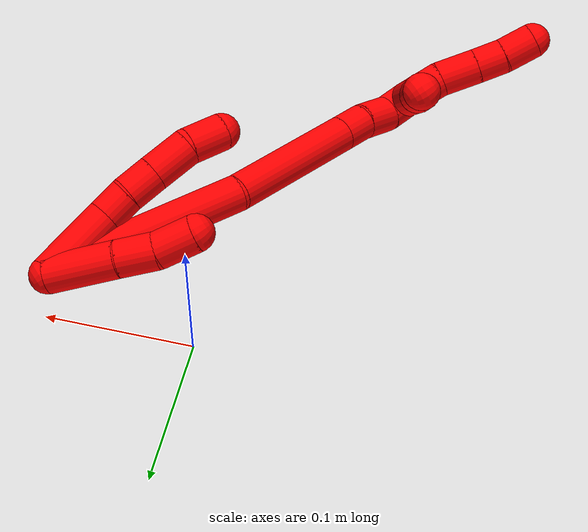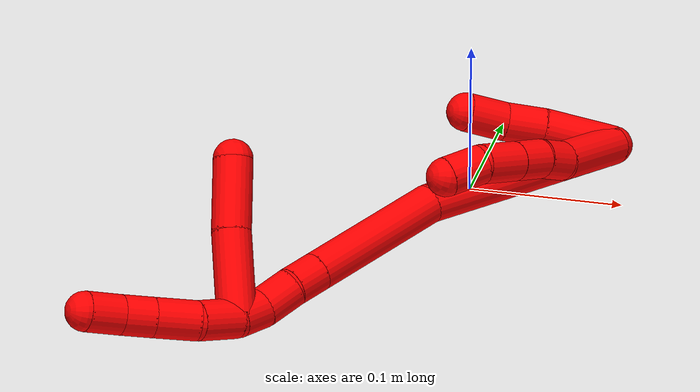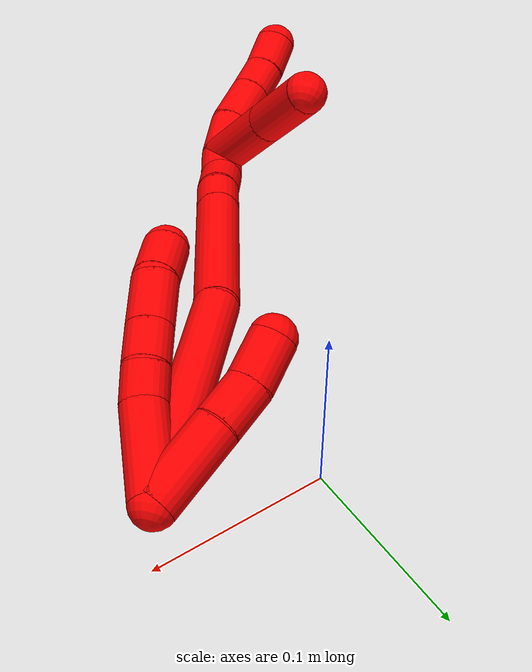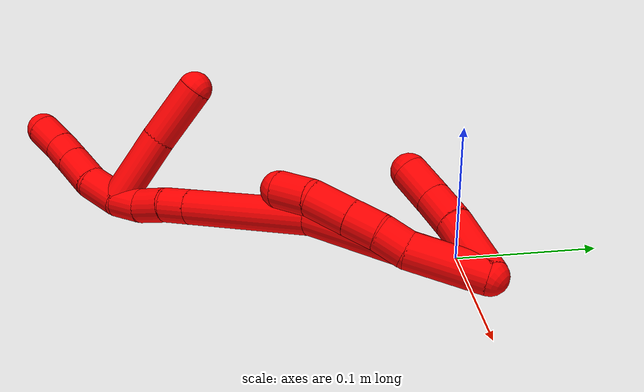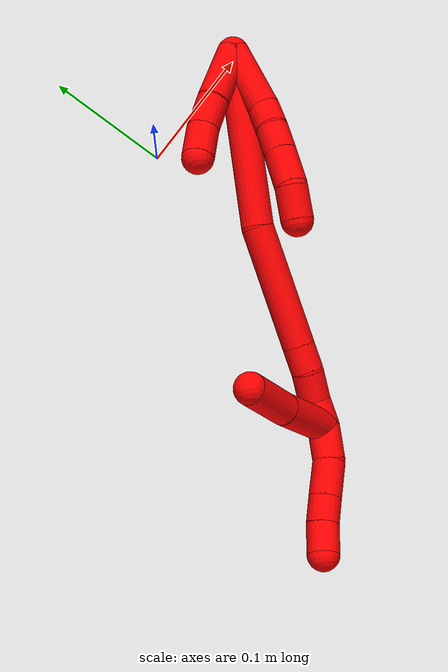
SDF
<sdf version="1.7">
 <world name="default">
  <model name="2">
   <static>0</static>
   <link name="2">
    <collision name="collision-cylinder-e_1_2_8">
     <pose>0.002425 -0.009349 0.024741 0.361297 0.091445 0.016713</pose>
     <geometry><cylinder><radius>0.0125</radius><length>0.053119</length></cylinder></geometry>
     <surface>
      <friction><ode><mu>1.16</mu><mu2>1.16</mu2><slip1>0</slip1><slip2>0</slip2></ode></friction>
      <contact><ode><kp>1e+06</kp><kd>1</kd><max_vel>0</max_vel><min_depth>0.001</min_depth></ode></contact>
     </surface>
    </collision>
    <visual name="visual-cylinder-e_1_2_8">
     <pose>0.002425 -0.009349 0.024741 0.361297 0.091445 0.016713</pose>
     <geometry><cylinder><radius>0.0125</radius><length>0.053119</length></cylinder></geometry>
     <material><ambient>1 0 0 1</ambient></material>
    </visual>
    <collision name="collision-cylinder-e_2_8_9">
     <pose>0.006726 -0.019765 0.059374 0.107374 0.186343 0.010043</pose>
     <geometry><cylinder><radius>0.0125</radius><length>0.020248</length></cylinder></geometry>
     <surface>
      <friction><ode><mu>1.16</mu><mu2>1.16</mu2><slip1>0</slip1><slip2>0</slip2></ode></friction>
      <contact><ode><kp>1e+06</kp><kd>1</kd><max_vel>0</max_vel><min_depth>0.001</min_depth></ode></contact>
     </surface>
    </collision>
    <visual name="visual-cylinder-e_2_8_9">
     <pose>0.006726 -0.019765 0.059374 0.107374 0.186343 0.010043</pose>
     <geometry><cylinder><radius>0.0125</radius><length>0.020248</length></cylinder></geometry>
     <material><ambient>1 0 0 1</ambient></material>
    </visual>
    <collision name="collision-cylinder-e_3_9_10">
     <pose>0.009095 -0.022826 0.080024 0.183338 0.044975 0.004135</pose>
     <geometry><cylinder><radius>0.0125</radius><length>0.021906</length></cylinder></geometry>
     <surface>
      <friction><ode><mu>1.16</mu><mu2>1.16</mu2><slip1>0</slip1><slip2>0</slip2></ode></friction>
      <contact><ode><kp>1e+06</kp><kd>1</kd><max_vel>0</max_vel><min_depth>0.001</min_depth></ode></contact>
     </surface>
    </collision>
    <visual name="visual-cylinder-e_3_9_10">
     <pose>0.009095 -0.022826 0.080024 0.183338 0.044975 0.004135</pose>
     <geometry><cylinder><radius>0.0125</radius><length>0.021906</length></cylinder></geometry>
     <material><ambient>1 0 0 1</ambient></material>
    </visual>
    <collision name="collision-cylinder-e_4_10_11">
     <pose>0.010087 -0.027268 0.104946 0.171071 0.034757 0.002981</pose>
     <geometry><cylinder><radius>0.0125</radius><length>0.028765</length></cylinder></geometry>
     <surface>
      <friction><ode><mu>1.16</mu><mu2>1.16</mu2><slip1>0</slip1><slip2>0</slip2></ode></friction>
      <contact><ode><kp>1e+06</kp><kd>1</kd><max_vel>0</max_vel><min_depth>0.001</min_depth></ode></contact>
     </surface>
    </collision>
    <visual name="visual-cylinder-e_4_10_11">
     <pose>0.010087 -0.027268 0.104946 0.171071 0.034757 0.002981</pose>
     <geometry><cylinder><radius>0.0125</radius><length>0.028765</length></cylinder></geometry>
     <material><ambient>1 0 0 1</ambient></material>
    </visual>
    <collision name="collision-cylinder-e_5_11_6">
     <pose>0.007251 -0.032987 0.131221 0.263907 -0.259881 -0.034685</pose>
     <geometry><cylinder><radius>0.0125</radius><length>0.025962</length></cylinder></geometry>
     <surface>
      <friction><ode><mu>1.16</mu><mu2>1.16</mu2><slip1>0</slip1><slip2>0</slip2></ode></friction>
      <contact><ode><kp>1e+06</kp><kd>1</kd><max_vel>0</max_vel><min_depth>0.001</min_depth></ode></contact>
     </surface>
    </collision>
    <visual name="visual-cylinder-e_5_11_6">
     <pose>0.007251 -0.032987 0.131221 0.263907 -0.259881 -0.034685</pose>
     <geometry><cylinder><radius>0.0125</radius><length>0.025962</length></cylinder></geometry>
     <material><ambient>1 0 0 1</ambient></material>
    </visual>
    <collision name="collision-cylinder-e_1_2_12">
     <pose>-0.004879 0.00873 0.021334 -0.388405 -0.208597 0.041171</pose>
     <geometry><cylinder><radius>0.0125</radius><length>0.047124</length></cylinder></geometry>
     <surface>
      <friction><ode><mu>1.16</mu><mu2>1.16</mu2><slip1>0</slip1><slip2>0</slip2></ode></friction>
      <contact><ode><kp>1e+06</kp><kd>1</kd><max_vel>0</max_vel><min_depth>0.001</min_depth></ode></contact>
     </surface>
    </collision>
    <visual name="visual-cylinder-e_1_2_12">
     <pose>-0.004879 0.00873 0.021334 -0.388405 -0.208597 0.041171</pose>
     <geometry><cylinder><radius>0.0125</radius><length>0.047124</length></cylinder></geometry>
     <material><ambient>1 0 0 1</ambient></material>
    </visual>
    <collision name="collision-cylinder-e_2_12_13">
     <pose>-0.013149 0.02131 0.054616 -0.311776 -0.263751 0.041688</pose>
     <geometry><cylinder><radius>0.0125</radius><length>0.026005</length></cylinder></geometry>
     <surface>
      <friction><ode><mu>1.16</mu><mu2>1.16</mu2><slip1>0</slip1><slip2>0</slip2></ode></friction>
      <contact><ode><kp>1e+06</kp><kd>1</kd><max_vel>0</max_vel><min_depth>0.001</min_depth></ode></contact>
     </surface>
    </collision>
    <visual name="visual-cylinder-e_2_12_13">
     <pose>-0.013149 0.02131 0.054616 -0.311776 -0.263751 0.041688</pose>
     <geometry><cylinder><radius>0.0125</radius><length>0.026005</length></cylinder></geometry>
     <material><ambient>1 0 0 1</ambient></material>
    </visual>
    <collision name="collision-cylinder-e_3_13_5">
     <pose>-0.017296 0.028405 0.07958 -0.244244 -0.05641 0.006925</pose>
     <geometry><cylinder><radius>0.0125</radius><length>0.026871</length></cylinder></geometry>
     <surface>
      <friction><ode><mu>1.16</mu><mu2>1.16</mu2><slip1>0</slip1><slip2>0</slip2></ode></friction>
      <contact><ode><kp>1e+06</kp><kd>1</kd><max_vel>0</max_vel><min_depth>0.001</min_depth></ode></contact>
     </surface>
    </collision>
    <visual name="visual-cylinder-e_3_13_5">
     <pose>-0.017296 0.028405 0.07958 -0.244244 -0.05641 0.006925</pose>
     <geometry><cylinder><radius>0.0125</radius><length>0.026871</length></cylinder></geometry>
     <material><ambient>1 0 0 1</ambient></material>
    </visual>
    <collision name="collision-cylinder-e_1_2_14">
     <pose>-0.017815 -0.014443 0.065326 0.21759 -0.260247 -0.028585</pose>
     <geometry><cylinder><radius>0.0125</radius><length>0.13847</length></cylinder></geometry>
     <surface>
      <friction><ode><mu>1.16</mu><mu2>1.16</mu2><slip1>0</slip1><slip2>0</slip2></ode></friction>
      <contact><ode><kp>1e+06</kp><kd>1</kd><max_vel>0</max_vel><min_depth>0.001</min_depth></ode></contact>
     </surface>
    </collision>
    <visual name="visual-cylinder-e_1_2_14">
     <pose>-0.017815 -0.014443 0.065326 0.21759 -0.260247 -0.028585</pose>
     <geometry><cylinder><radius>0.0125</radius><length>0.13847</length></cylinder></geometry>
     <material><ambient>1 0 0 1</ambient></material>
    </visual>
    <collision name="collision-cylinder-e_2_14_15">
     <pose>-0.046646 -0.04945 0.172758 0.454314 -0.230882 -0.053593</pose>
     <geometry><cylinder><radius>0.0125</radius><length>0.096273</length></cylinder></geometry>
     <surface>
      <friction><ode><mu>1.16</mu><mu2>1.16</mu2><slip1>0</slip1><slip2>0</slip2></ode></friction>
      <contact><ode><kp>1e+06</kp><kd>1</kd><max_vel>0</max_vel><min_depth>0.001</min_depth></ode></contact>
     </surface>
    </collision>
    <visual name="visual-cylinder-e_2_14_15">
     <pose>-0.046646 -0.04945 0.172758 0.454314 -0.230882 -0.053593</pose>
     <geometry><cylinder><radius>0.0125</radius><length>0.096273</length></cylinder></geometry>
     <material><ambient>1 0 0 1</ambient></material>
    </visual>
    <collision name="collision-cylinder-e_3_15_16">
     <pose>-0.060021 -0.074509 0.224055 0.454853 -0.226644 -0.052666</pose>
     <geometry><cylinder><radius>0.0125</radius><length>0.021001</length></cylinder></geometry>
     <surface>
      <friction><ode><mu>1.16</mu><mu2>1.16</mu2><slip1>0</slip1><slip2>0</slip2></ode></friction>
      <contact><ode><kp>1e+06</kp><kd>1</kd><max_vel>0</max_vel><min_depth>0.001</min_depth></ode></contact>
     </surface>
    </collision>
    <visual name="visual-cylinder-e_3_15_16">
     <pose>-0.060021 -0.074509 0.224055 0.454853 -0.226644 -0.052666</pose>
     <geometry><cylinder><radius>0.0125</radius><length>0.021001</length></cylinder></geometry>
     <material><ambient>1 0 0 1</ambient></material>
    </visual>
    <collision name="collision-cylinder-e_4_16_17">
     <pose>-0.066996 -0.08411 0.242993 0.48258 -0.397218 -0.098974</pose>
     <geometry><cylinder><radius>0.0125</radius><length>0.023863</length></cylinder></geometry>
     <surface>
      <friction><ode><mu>1.16</mu><mu2>1.16</mu2><slip1>0</slip1><slip2>0</slip2></ode></friction>
      <contact><ode><kp>1e+06</kp><kd>1</kd><max_vel>0</max_vel><min_depth>0.001</min_depth></ode></contact>
     </surface>
    </collision>
    <visual name="visual-cylinder-e_4_16_17">
     <pose>-0.066996 -0.08411 0.242993 0.48258 -0.397218 -0.098974</pose>
     <geometry><cylinder><radius>0.0125</radius><length>0.023863</length></cylinder></geometry>
     <material><ambient>1 0 0 1</ambient></material>
    </visual>
    <collision name="collision-cylinder-e_5_17_1">
     <pose>-0.072699 -0.092657 0.262276 0.346261 -0.106828 -0.018699</pose>
     <geometry><cylinder><radius>0.0125</radius><length>0.020394</length></cylinder></geometry>
     <surface>
      <friction><ode><mu>1.16</mu><mu2>1.16</mu2><slip1>0</slip1><slip2>0</slip2></ode></friction>
      <contact><ode><kp>1e+06</kp><kd>1</kd><max_vel>0</max_vel><min_depth>0.001</min_depth></ode></contact>
     </surface>
    </collision>
    <visual name="visual-cylinder-e_5_17_1">
     <pose>-0.072699 -0.092657 0.262276 0.346261 -0.106828 -0.018699</pose>
     <geometry><cylinder><radius>0.0125</radius><length>0.020394</length></cylinder></geometry>
     <material><ambient>1 0 0 1</ambient></material>
    </visual>
    <collision name="collision-cylinder-e_1_1_18">
     <pose>-0.074645 -0.09709 0.285615 0.071803 -0.061984 -0.002227</pose>
     <geometry><cylinder><radius>0.0125</radius><length>0.02773</length></cylinder></geometry>
     <surface>
      <friction><ode><mu>1.16</mu><mu2>1.16</mu2><slip1>0</slip1><slip2>0</slip2></ode></friction>
      <contact><ode><kp>1e+06</kp><kd>1</kd><max_vel>0</max_vel><min_depth>0.001</min_depth></ode></contact>
     </surface>
    </collision>
    <visual name="visual-cylinder-e_1_1_18">
     <pose>-0.074645 -0.09709 0.285615 0.071803 -0.061984 -0.002227</pose>
     <geometry><cylinder><radius>0.0125</radius><length>0.02773</length></cylinder></geometry>
     <material><ambient>1 0 0 1</ambient></material>
    </visual>
    <collision name="collision-cylinder-e_2_18_19">
     <pose>-0.078095 -0.095795 0.313154 -0.165039 -0.183938 0.015256</pose>
     <geometry><cylinder><radius>0.0125</radius><length>0.028327</length></cylinder></geometry>
     <surface>
      <friction><ode><mu>1.16</mu><mu2>1.16</mu2><slip1>0</slip1><slip2>0</slip2></ode></friction>
      <contact><ode><kp>1e+06</kp><kd>1</kd><max_vel>0</max_vel><min_depth>0.001</min_depth></ode></contact>
     </surface>
    </collision>
    <visual name="visual-cylinder-e_2_18_19">
     <pose>-0.078095 -0.095795 0.313154 -0.165039 -0.183938 0.015256</pose>
     <geometry><cylinder><radius>0.0125</radius><length>0.028327</length></cylinder></geometry>
     <material><ambient>1 0 0 1</ambient></material>
    </visual>
    <collision name="collision-cylinder-e_3_19_20">
     <pose>-0.082367 -0.091915 0.336838 -0.1587 -0.165401 0.013182</pose>
     <geometry><cylinder><radius>0.0125</radius><length>0.020429</length></cylinder></geometry>
     <surface>
      <friction><ode><mu>1.16</mu><mu2>1.16</mu2><slip1>0</slip1><slip2>0</slip2></ode></friction>
      <contact><ode><kp>1e+06</kp><kd>1</kd><max_vel>0</max_vel><min_depth>0.001</min_depth></ode></contact>
     </surface>
    </collision>
    <visual name="visual-cylinder-e_3_19_20">
     <pose>-0.082367 -0.091915 0.336838 -0.1587 -0.165401 0.013182</pose>
     <geometry><cylinder><radius>0.0125</radius><length>0.020429</length></cylinder></geometry>
     <material><ambient>1 0 0 1</ambient></material>
    </visual>
    <collision name="collision-cylinder-e_4_20_4">
     <pose>-0.084688 -0.089178 0.35847 -0.097707 -0.054399 0.00266</pose>
     <geometry><cylinder><radius>0.0125</radius><length>0.023513</length></cylinder></geometry>
     <surface>
      <friction><ode><mu>1.16</mu><mu2>1.16</mu2><slip1>0</slip1><slip2>0</slip2></ode></friction>
      <contact><ode><kp>1e+06</kp><kd>1</kd><max_vel>0</max_vel><min_depth>0.001</min_depth></ode></contact>
     </surface>
    </collision>
    <visual name="visual-cylinder-e_4_20_4">
     <pose>-0.084688 -0.089178 0.35847 -0.097707 -0.054399 0.00266</pose>
     <geometry><cylinder><radius>0.0125</radius><length>0.023513</length></cylinder></geometry>
     <material><ambient>1 0 0 1</ambient></material>
    </visual>
    <collision name="collision-cylinder-e_1_1_21">
     <pose>-0.063971 -0.070755 0.271381 -1.58784 0.369467 -0.375672</pose>
     <geometry><cylinder><radius>0.0125</radius><length>0.054361</length></cylinder></geometry>
     <surface>
      <friction><ode><mu>1.16</mu><mu2>1.16</mu2><slip1>0</slip1><slip2>0</slip2></ode></friction>
      <contact><ode><kp>1e+06</kp><kd>1</kd><max_vel>0</max_vel><min_depth>0.001</min_depth></ode></contact>
     </surface>
    </collision>
    <visual name="visual-cylinder-e_1_1_21">
     <pose>-0.063971 -0.070755 0.271381 -1.58784 0.369467 -0.375672</pose>
     <geometry><cylinder><radius>0.0125</radius><length>0.054361</length></cylinder></geometry>
     <material><ambient>1 0 0 1</ambient></material>
    </visual>
    <collision name="collision-cylinder-e_2_21_3">
     <pose>-0.045094 -0.024564 0.268961 -1.66583 0.408355 -0.447839</pose>
     <geometry><cylinder><radius>0.0125</radius><length>0.045639</length></cylinder></geometry>
     <surface>
      <friction><ode><mu>1.16</mu><mu2>1.16</mu2><slip1>0</slip1><slip2>0</slip2></ode></friction>
      <contact><ode><kp>1e+06</kp><kd>1</kd><max_vel>0</max_vel><min_depth>0.001</min_depth></ode></contact>
     </surface>
    </collision>
    <visual name="visual-cylinder-e_2_21_3">
     <pose>-0.045094 -0.024564 0.268961 -1.66583 0.408355 -0.447839</pose>
     <geometry><cylinder><radius>0.0125</radius><length>0.045639</length></cylinder></geometry>
     <material><ambient>1 0 0 1</ambient></material>
    </visual>
    <collision name="collision-sphere-3">
     <pose>-0.036033 -0.003715 0.266974 0 -0 0</pose>
     <geometry><sphere><radius>0.0125</radius></sphere></geometry>
     <surface>
      <friction><ode><mu>1.16</mu><mu2>1.16</mu2><slip1>0</slip1><slip2>0</slip2></ode></friction>
      <contact><ode><kp>1e+06</kp><kd>1</kd><max_vel>0</max_vel><min_depth>0.001</min_depth></ode></contact>
     </surface>
    </collision>
    <visual name="visual-sphere-3">
     <pose>-0.036033 -0.003715 0.266974 0 -0 0</pose>
     <geometry><sphere><radius>0.0125</radius></sphere></geometry>
     <material><ambient>1 0 0 1</ambient></material>
    </visual>
    <collision name="collision-sphere-21">
     <pose>-0.054156 -0.045412 0.270948 0 -0 0</pose>
     <geometry><sphere><radius>0.0125</radius></sphere></geometry>
     <surface>
      <friction><ode><mu>1.16</mu><mu2>1.16</mu2><slip1>0</slip1><slip2>0</slip2></ode></friction>
      <contact><ode><kp>1e+06</kp><kd>1</kd><max_vel>0</max_vel><min_depth>0.001</min_depth></ode></contact>
     </surface>
    </collision>
    <visual name="visual-sphere-21">
     <pose>-0.054156 -0.045412 0.270948 0 -0 0</pose>
     <geometry><sphere><radius>0.0125</radius></sphere></geometry>
     <material><ambient>1 0 0 1</ambient></material>
    </visual>
    <collision name="collision-sphere-4">
     <pose>-0.085328 -0.088033 0.370153 0 -0 0</pose>
     <geometry><sphere><radius>0.0125</radius></sphere></geometry>
     <surface>
      <friction><ode><mu>1.16</mu><mu2>1.16</mu2><slip1>0</slip1><slip2>0</slip2></ode></friction>
      <contact><ode><kp>1e+06</kp><kd>1</kd><max_vel>0</max_vel><min_depth>0.001</min_depth></ode></contact>
     </surface>
    </collision>
    <visual name="visual-sphere-4">
     <pose>-0.085328 -0.088033 0.370153 0 -0 0</pose>
     <geometry><sphere><radius>0.0125</radius></sphere></geometry>
     <material><ambient>1 0 0 1</ambient></material>
    </visual>
    <collision name="collision-sphere-20">
     <pose>-0.084049 -0.090323 0.346786 0 -0 0</pose>
     <geometry><sphere><radius>0.0125</radius></sphere></geometry>
     <surface>
      <friction><ode><mu>1.16</mu><mu2>1.16</mu2><slip1>0</slip1><slip2>0</slip2></ode></friction>
      <contact><ode><kp>1e+06</kp><kd>1</kd><max_vel>0</max_vel><min_depth>0.001</min_depth></ode></contact>
     </surface>
    </collision>
    <visual name="visual-sphere-20">
     <pose>-0.084049 -0.090323 0.346786 0 -0 0</pose>
     <geometry><sphere><radius>0.0125</radius></sphere></geometry>
     <material><ambient>1 0 0 1</ambient></material>
    </visual>
    <collision name="collision-sphere-6">
     <pose>0.003915 -0.036259 0.143331 0 -0 0</pose>
     <geometry><sphere><radius>0.0125</radius></sphere></geometry>
     <surface>
      <friction><ode><mu>1.16</mu><mu2>1.16</mu2><slip1>0</slip1><slip2>0</slip2></ode></friction>
      <contact><ode><kp>1e+06</kp><kd>1</kd><max_vel>0</max_vel><min_depth>0.001</min_depth></ode></contact>
     </surface>
    </collision>
    <visual name="visual-sphere-6">
     <pose>0.003915 -0.036259 0.143331 0 -0 0</pose>
     <geometry><sphere><radius>0.0125</radius></sphere></geometry>
     <material><ambient>1 0 0 1</ambient></material>
    </visual>
    <collision name="collision-sphere-11">
     <pose>0.010587 -0.029715 0.11911 0 -0 0</pose>
     <geometry><sphere><radius>0.0125</radius></sphere></geometry>
     <surface>
      <friction><ode><mu>1.16</mu><mu2>1.16</mu2><slip1>0</slip1><slip2>0</slip2></ode></friction>
      <contact><ode><kp>1e+06</kp><kd>1</kd><max_vel>0</max_vel><min_depth>0.001</min_depth></ode></contact>
     </surface>
    </collision>
    <visual name="visual-sphere-11">
     <pose>0.010587 -0.029715 0.11911 0 -0 0</pose>
     <geometry><sphere><radius>0.0125</radius></sphere></geometry>
     <material><ambient>1 0 0 1</ambient></material>
    </visual>
    <collision name="collision-sphere-10">
     <pose>0.009587 -0.024821 0.090782 0 -0 0</pose>
     <geometry><sphere><radius>0.0125</radius></sphere></geometry>
     <surface>
      <friction><ode><mu>1.16</mu><mu2>1.16</mu2><slip1>0</slip1><slip2>0</slip2></ode></friction>
      <contact><ode><kp>1e+06</kp><kd>1</kd><max_vel>0</max_vel><min_depth>0.001</min_depth></ode></contact>
     </surface>
    </collision>
    <visual name="visual-sphere-10">
     <pose>0.009587 -0.024821 0.090782 0 -0 0</pose>
     <geometry><sphere><radius>0.0125</radius></sphere></geometry>
     <material><ambient>1 0 0 1</ambient></material>
    </visual>
    <collision name="collision-sphere-9">
     <pose>0.008602 -0.020831 0.069266 0 -0 0</pose>
     <geometry><sphere><radius>0.0125</radius></sphere></geometry>
     <surface>
      <friction><ode><mu>1.16</mu><mu2>1.16</mu2><slip1>0</slip1><slip2>0</slip2></ode></friction>
      <contact><ode><kp>1e+06</kp><kd>1</kd><max_vel>0</max_vel><min_depth>0.001</min_depth></ode></contact>
     </surface>
    </collision>
    <visual name="visual-sphere-9">
     <pose>0.008602 -0.020831 0.069266 0 -0 0</pose>
     <geometry><sphere><radius>0.0125</radius></sphere></geometry>
     <material><ambient>1 0 0 1</ambient></material>
    </visual>
    <collision name="collision-sphere-2">
     <geometry><sphere><radius>0.0125</radius></sphere></geometry>
     <surface>
      <friction><ode><mu>1.16</mu><mu2>1.16</mu2><slip1>0</slip1><slip2>0</slip2></ode></friction>
      <contact><ode><kp>1e+06</kp><kd>1</kd><max_vel>0</max_vel><min_depth>0.001</min_depth></ode></contact>
     </surface>
    </collision>
    <visual name="visual-sphere-2">
     <geometry><sphere><radius>0.0125</radius></sphere></geometry>
     <material><ambient>1 0 0 1</ambient></material>
    </visual>
    <collision name="collision-sphere-19">
     <pose>-0.080685 -0.093508 0.326889 0 -0 0</pose>
     <geometry><sphere><radius>0.0125</radius></sphere></geometry>
     <surface>
      <friction><ode><mu>1.16</mu><mu2>1.16</mu2><slip1>0</slip1><slip2>0</slip2></ode></friction>
      <contact><ode><kp>1e+06</kp><kd>1</kd><max_vel>0</max_vel><min_depth>0.001</min_depth></ode></contact>
     </surface>
    </collision>
    <visual name="visual-sphere-19">
     <pose>-0.080685 -0.093508 0.326889 0 -0 0</pose>
     <geometry><sphere><radius>0.0125</radius></sphere></geometry>
     <material><ambient>1 0 0 1</ambient></material>
    </visual>
    <collision name="collision-sphere-8">
     <pose>0.004851 -0.018699 0.049482 0 -0 0</pose>
     <geometry><sphere><radius>0.0125</radius></sphere></geometry>
     <surface>
      <friction><ode><mu>1.16</mu><mu2>1.16</mu2><slip1>0</slip1><slip2>0</slip2></ode></friction>
      <contact><ode><kp>1e+06</kp><kd>1</kd><max_vel>0</max_vel><min_depth>0.001</min_depth></ode></contact>
     </surface>
    </collision>
    <visual name="visual-sphere-8">
     <pose>0.004851 -0.018699 0.049482 0 -0 0</pose>
     <geometry><sphere><radius>0.0125</radius></sphere></geometry>
     <material><ambient>1 0 0 1</ambient></material>
    </visual>
    <collision name="collision-sphere-12">
     <pose>-0.009759 0.01746 0.042669 0 -0 0</pose>
     <geometry><sphere><radius>0.0125</radius></sphere></geometry>
     <surface>
      <friction><ode><mu>1.16</mu><mu2>1.16</mu2><slip1>0</slip1><slip2>0</slip2></ode></friction>
      <contact><ode><kp>1e+06</kp><kd>1</kd><max_vel>0</max_vel><min_depth>0.001</min_depth></ode></contact>
     </surface>
    </collision>
    <visual name="visual-sphere-12">
     <pose>-0.009759 0.01746 0.042669 0 -0 0</pose>
     <geometry><sphere><radius>0.0125</radius></sphere></geometry>
     <material><ambient>1 0 0 1</ambient></material>
    </visual>
    <collision name="collision-sphere-13">
     <pose>-0.016538 0.025161 0.066564 0 -0 0</pose>
     <geometry><sphere><radius>0.0125</radius></sphere></geometry>
     <surface>
      <friction><ode><mu>1.16</mu><mu2>1.16</mu2><slip1>0</slip1><slip2>0</slip2></ode></friction>
      <contact><ode><kp>1e+06</kp><kd>1</kd><max_vel>0</max_vel><min_depth>0.001</min_depth></ode></contact>
     </surface>
    </collision>
    <visual name="visual-sphere-13">
     <pose>-0.016538 0.025161 0.066564 0 -0 0</pose>
     <geometry><sphere><radius>0.0125</radius></sphere></geometry>
     <material><ambient>1 0 0 1</ambient></material>
    </visual>
    <collision name="collision-sphere-5">
     <pose>-0.018053 0.031648 0.092596 0 -0 0</pose>
     <geometry><sphere><radius>0.0125</radius></sphere></geometry>
     <surface>
      <friction><ode><mu>1.16</mu><mu2>1.16</mu2><slip1>0</slip1><slip2>0</slip2></ode></friction>
      <contact><ode><kp>1e+06</kp><kd>1</kd><max_vel>0</max_vel><min_depth>0.001</min_depth></ode></contact>
     </surface>
    </collision>
    <visual name="visual-sphere-5">
     <pose>-0.018053 0.031648 0.092596 0 -0 0</pose>
     <geometry><sphere><radius>0.0125</radius></sphere></geometry>
     <material><ambient>1 0 0 1</ambient></material>
    </visual>
    <collision name="collision-sphere-14">
     <pose>-0.035631 -0.028886 0.130652 0 -0 0</pose>
     <geometry><sphere><radius>0.0125</radius></sphere></geometry>
     <surface>
      <friction><ode><mu>1.16</mu><mu2>1.16</mu2><slip1>0</slip1><slip2>0</slip2></ode></friction>
      <contact><ode><kp>1e+06</kp><kd>1</kd><max_vel>0</max_vel><min_depth>0.001</min_depth></ode></contact>
     </surface>
    </collision>
    <visual name="visual-sphere-14">
     <pose>-0.035631 -0.028886 0.130652 0 -0 0</pose>
     <geometry><sphere><radius>0.0125</radius></sphere></geometry>
     <material><ambient>1 0 0 1</ambient></material>
    </visual>
    <collision name="collision-sphere-15">
     <pose>-0.057662 -0.070014 0.214864 0 -0 0</pose>
     <geometry><sphere><radius>0.0125</radius></sphere></geometry>
     <surface>
      <friction><ode><mu>1.16</mu><mu2>1.16</mu2><slip1>0</slip1><slip2>0</slip2></ode></friction>
      <contact><ode><kp>1e+06</kp><kd>1</kd><max_vel>0</max_vel><min_depth>0.001</min_depth></ode></contact>
     </surface>
    </collision>
    <visual name="visual-sphere-15">
     <pose>-0.057662 -0.070014 0.214864 0 -0 0</pose>
     <geometry><sphere><radius>0.0125</radius></sphere></geometry>
     <material><ambient>1 0 0 1</ambient></material>
    </visual>
    <collision name="collision-sphere-16">
     <pose>-0.062381 -0.079004 0.233247 0 -0 0</pose>
     <geometry><sphere><radius>0.0125</radius></sphere></geometry>
     <surface>
      <friction><ode><mu>1.16</mu><mu2>1.16</mu2><slip1>0</slip1><slip2>0</slip2></ode></friction>
      <contact><ode><kp>1e+06</kp><kd>1</kd><max_vel>0</max_vel><min_depth>0.001</min_depth></ode></contact>
     </surface>
    </collision>
    <visual name="visual-sphere-16">
     <pose>-0.062381 -0.079004 0.233247 0 -0 0</pose>
     <geometry><sphere><radius>0.0125</radius></sphere></geometry>
     <material><ambient>1 0 0 1</ambient></material>
    </visual>
    <collision name="collision-sphere-17">
     <pose>-0.071612 -0.089216 0.252739 0 -0 0</pose>
     <geometry><sphere><radius>0.0125</radius></sphere></geometry>
     <surface>
      <friction><ode><mu>1.16</mu><mu2>1.16</mu2><slip1>0</slip1><slip2>0</slip2></ode></friction>
      <contact><ode><kp>1e+06</kp><kd>1</kd><max_vel>0</max_vel><min_depth>0.001</min_depth></ode></contact>
     </surface>
    </collision>
    <visual name="visual-sphere-17">
     <pose>-0.071612 -0.089216 0.252739 0 -0 0</pose>
     <geometry><sphere><radius>0.0125</radius></sphere></geometry>
     <material><ambient>1 0 0 1</ambient></material>
    </visual>
    <collision name="collision-sphere-1">
     <pose>-0.073787 -0.096098 0.271813 0 -0 0</pose>
     <geometry><sphere><radius>0.0125</radius></sphere></geometry>
     <surface>
      <friction><ode><mu>1.16</mu><mu2>1.16</mu2><slip1>0</slip1><slip2>0</slip2></ode></friction>
      <contact><ode><kp>1e+06</kp><kd>1</kd><max_vel>0</max_vel><min_depth>0.001</min_depth></ode></contact>
     </surface>
    </collision>
    <visual name="visual-sphere-1">
     <pose>-0.073787 -0.096098 0.271813 0 -0 0</pose>
     <geometry><sphere><radius>0.0125</radius></sphere></geometry>
     <material><ambient>1 0 0 1</ambient></material>
    </visual>
    <collision name="collision-sphere-18">
     <pose>-0.075504 -0.098083 0.299418 0 -0 0</pose>
     <geometry><sphere><radius>0.0125</radius></sphere></geometry>
     <surface>
      <friction><ode><mu>1.16</mu><mu2>1.16</mu2><slip1>0</slip1><slip2>0</slip2></ode></friction>
      <contact><ode><kp>1e+06</kp><kd>1</kd><max_vel>0</max_vel><min_depth>0.001</min_depth></ode></contact>
     </surface>
    </collision>
    <visual name="visual-sphere-18">
     <pose>-0.075504 -0.098083 0.299418 0 -0 0</pose>
     <geometry><sphere><radius>0.0125</radius></sphere></geometry>
     <material><ambient>1 0 0 1</ambient></material>
    </visual>
    <inertial>
     <pose>-0.03318 -0.037172 0.154557 0 -0 0</pose>
     <mass>0.75</mass>
     <inertia>
      <ixx>0.000345</ixx>
      <ixy>0</ixy>
      <ixz>0</ixz>
      <iyy>0.000327</iyy>
      <iyz>0</iyz>
      <izz>0.000178</izz>
     </inertia>
    </inertial>
   </link>
   <pose>0.09434 -0.003574 0.044264 1.07171 -0.930205 -0.411668</pose>
  </model>
 </world>
</sdf>
